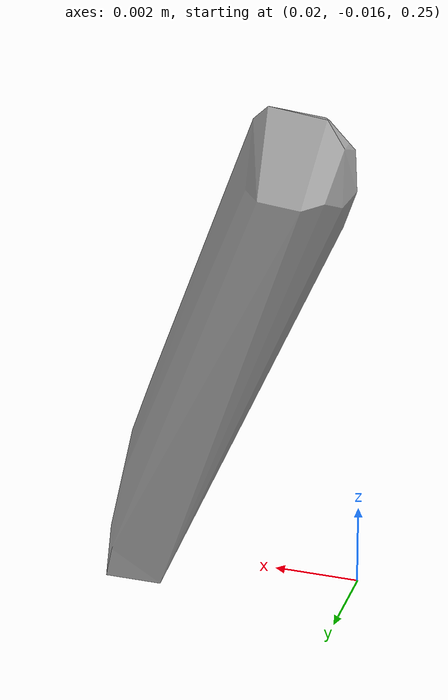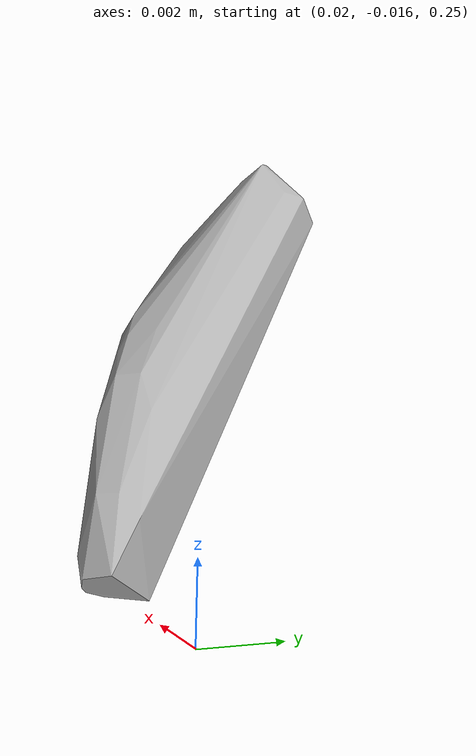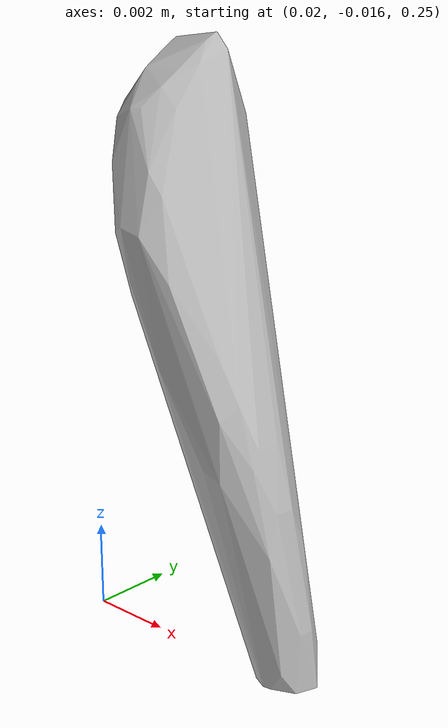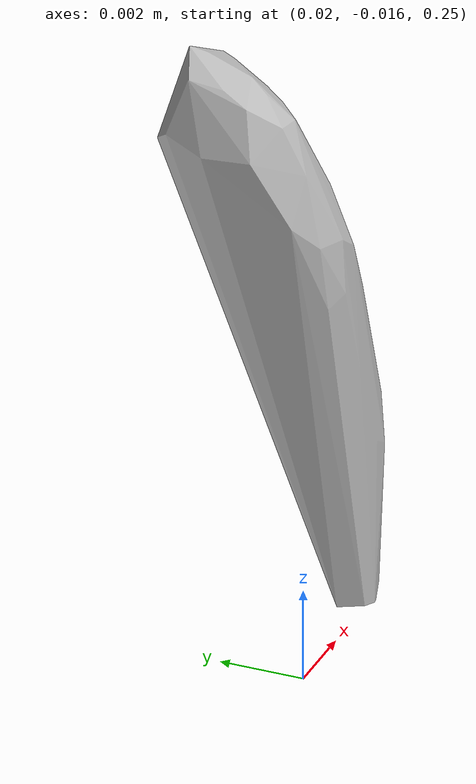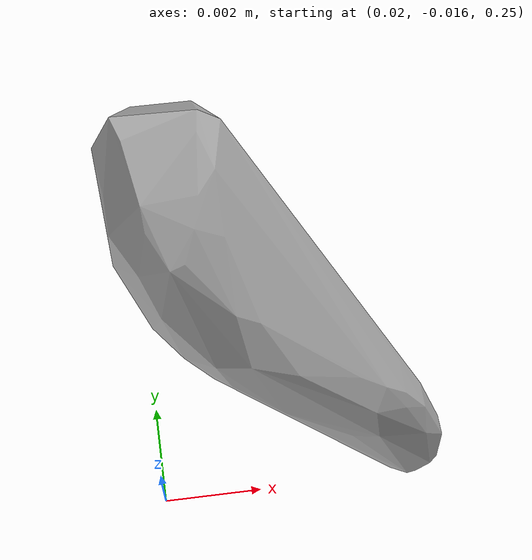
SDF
<?xml version="1.0"?>
<sdf version="1.7">
  <model name="vascular_partexport038">
    <link name="vascular_partexport038_body">
      <visual name="vascular_partexport038_visual">
        <geometry>
          <mesh>
            <uri>vascular_partexport038.obj</uri>
          </mesh>
        </geometry>
      </visual>
      <collision name="vascular_partexport038_collision">
        <geometry>
          <mesh>
            <uri>vascular_partexport038.obj</uri>
          </mesh>
        </geometry>
      </collision>
    </link>
    <frame name="vascular_partexport038_center">
      <pose relative_to="vascular_partexport038_body">0 0 0 0 0 0</pose>
    </frame>
  </model>
</sdf>
